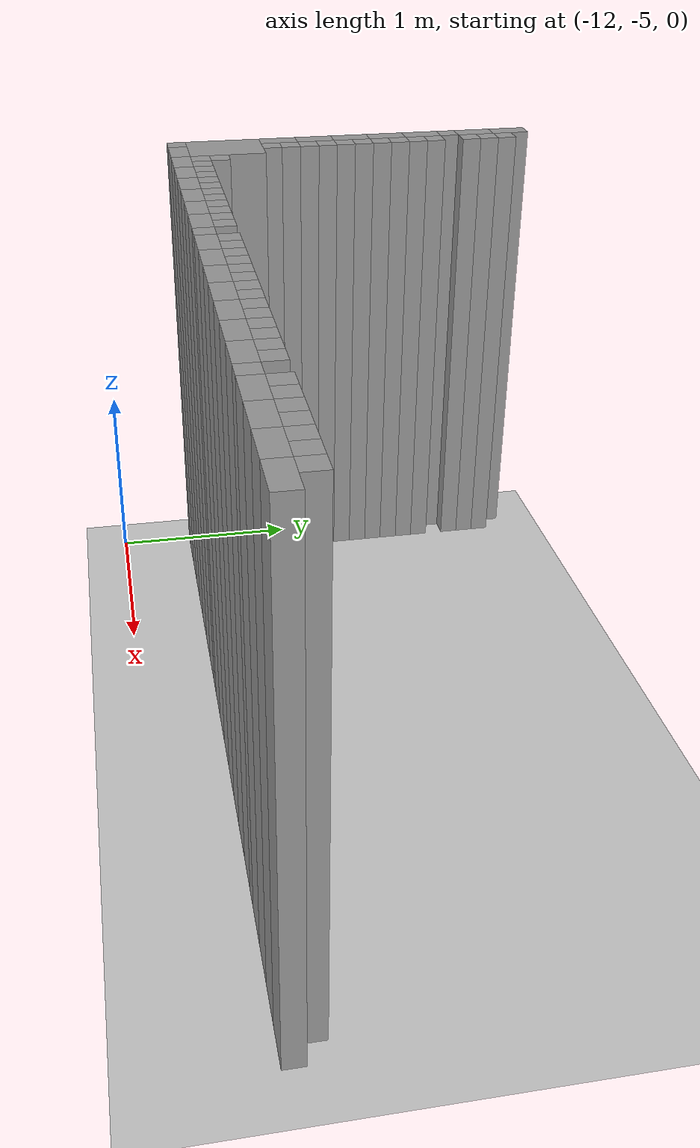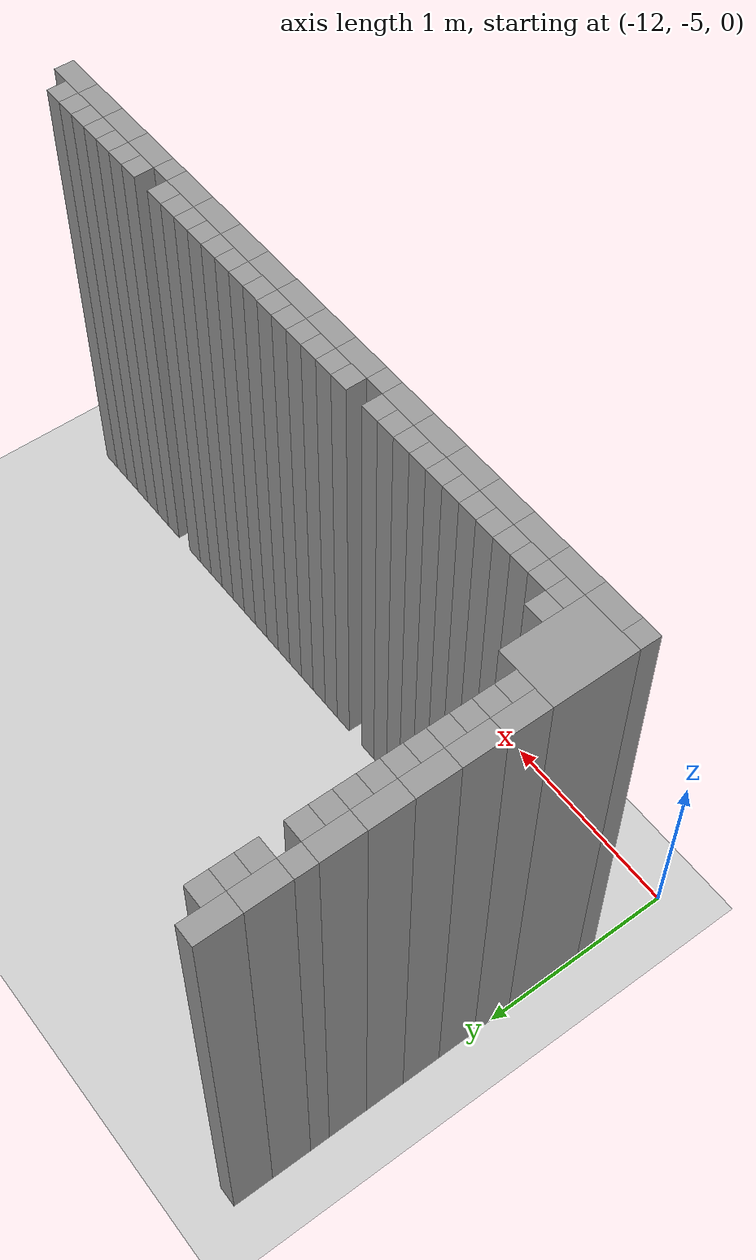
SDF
<sdf version="1.6">
 <world name="default">
  <include><uri>model://sun</uri></include>
  <include><uri>model://ground_plane</uri></include>
  <model name="stage_test">
   <static>1</static>
   <pose>-12 -12 0 0 0 0</pose>
   <link name="Wall_318">
    <pose>0.05 9.3 0 0 0 0</pose>
    <collision name="Wall_318_collision">
     <pose>0 0 1.25 0 0 0</pose>
     <geometry><box><size>0.1 0.1999999999999993 2.5</size></box></geometry>
    </collision>
    <visual name="Wall_318_visual">
     <pose>0 0 1.25 0 0 0</pose>
     <geometry><box><size>0.1 0.1999999999999993 2.5</size></box></geometry>
     <material>
      <script><uri>file://media/materials/scripts/gazebo.material</uri><name>Gazebo/Grey</name></script>
      <ambient>1 1 1 1</ambient>
     </material>
    </visual>
   </link>
   <link name="Wall_319">
    <pose>0.05 9.100000000000001 0 0 0 0</pose>
    <collision name="Wall_319_collision">
     <pose>0 0 1.25 0 0 0</pose>
     <geometry><box><size>0.1 0.20000000000000107 2.5</size></box></geometry>
    </collision>
    <visual name="Wall_319_visual">
     <pose>0 0 1.25 0 0 0</pose>
     <geometry><box><size>0.1 0.20000000000000107 2.5</size></box></geometry>
     <material>
      <script><uri>file://media/materials/scripts/gazebo.material</uri><name>Gazebo/Grey</name></script>
      <ambient>1 1 1 1</ambient>
     </material>
    </visual>
   </link>
   <link name="Wall_321">
    <pose>0.15 9.25 0 0 0 0</pose>
    <collision name="Wall_321_collision">
     <pose>0 0 1.25 0 0 0</pose>
     <geometry><box><size>0.1 0.09999999999999964 2.5</size></box></geometry>
    </collision>
    <visual name="Wall_321_visual">
     <pose>0 0 1.25 0 0 0</pose>
     <geometry><box><size>0.1 0.09999999999999964 2.5</size></box></geometry>
     <material>
      <script><uri>file://media/materials/scripts/gazebo.material</uri><name>Gazebo/Grey</name></script>
      <ambient>1 1 1 1</ambient>
     </material>
    </visual>
   </link>
   <link name="Wall_322">
    <pose>0.15 9.15 0 0 0 0</pose>
    <collision name="Wall_322_collision">
     <pose>0 0 1.25 0 0 0</pose>
     <geometry><box><size>0.1 0.10000000000000142 2.5</size></box></geometry>
    </collision>
    <visual name="Wall_322_visual">
     <pose>0 0 1.25 0 0 0</pose>
     <geometry><box><size>0.1 0.10000000000000142 2.5</size></box></geometry>
     <material>
      <script><uri>file://media/materials/scripts/gazebo.material</uri><name>Gazebo/Grey</name></script>
      <ambient>1 1 1 1</ambient>
     </material>
    </visual>
   </link>
   <link name="Wall_323">
    <pose>0.15 9.05 0 0 0 0</pose>
    <collision name="Wall_323_collision">
     <pose>0 0 1.25 0 0 0</pose>
     <geometry><box><size>0.1 0.09999999999999964 2.5</size></box></geometry>
    </collision>
    <visual name="Wall_323_visual">
     <pose>0 0 1.25 0 0 0</pose>
     <geometry><box><size>0.1 0.09999999999999964 2.5</size></box></geometry>
     <material>
      <script><uri>file://media/materials/scripts/gazebo.material</uri><name>Gazebo/Grey</name></script>
      <ambient>1 1 1 1</ambient>
     </material>
    </visual>
   </link>
   <link name="Wall_324">
    <pose>0.05 8.95 0 0 0 0</pose>
    <collision name="Wall_324_collision">
     <pose>0 0 1.25 0 0 0</pose>
     <geometry><box><size>0.1 0.09999999999999964 2.5</size></box></geometry>
    </collision>
    <visual name="Wall_324_visual">
     <pose>0 0 1.25 0 0 0</pose>
     <geometry><box><size>0.1 0.09999999999999964 2.5</size></box></geometry>
     <material>
      <script><uri>file://media/materials/scripts/gazebo.material</uri><name>Gazebo/Grey</name></script>
      <ambient>1 1 1 1</ambient>
     </material>
    </visual>
   </link>
   <link name="Wall_325">
    <pose>0.05 8.8 0 0 0 0</pose>
    <collision name="Wall_325_collision">
     <pose>0 0 1.25 0 0 0</pose>
     <geometry><box><size>0.1 0.1999999999999993 2.5</size></box></geometry>
    </collision>
    <visual name="Wall_325_visual">
     <pose>0 0 1.25 0 0 0</pose>
     <geometry><box><size>0.1 0.1999999999999993 2.5</size></box></geometry>
     <material>
      <script><uri>file://media/materials/scripts/gazebo.material</uri><name>Gazebo/Grey</name></script>
      <ambient>1 1 1 1</ambient>
     </material>
    </visual>
   </link>
   <link name="Wall_326">
    <pose>0.15 8.85 0 0 0 0</pose>
    <collision name="Wall_326_collision">
     <pose>0 0 1.25 0 0 0</pose>
     <geometry><box><size>0.1 0.09999999999999964 2.5</size></box></geometry>
    </collision>
    <visual name="Wall_326_visual">
     <pose>0 0 1.25 0 0 0</pose>
     <geometry><box><size>0.1 0.09999999999999964 2.5</size></box></geometry>
     <material>
      <script><uri>file://media/materials/scripts/gazebo.material</uri><name>Gazebo/Grey</name></script>
      <ambient>1 1 1 1</ambient>
     </material>
    </visual>
   </link>
   <link name="Wall_327">
    <pose>0.15 8.75 0 0 0 0</pose>
    <collision name="Wall_327_collision">
     <pose>0 0 1.25 0 0 0</pose>
     <geometry><box><size>0.1 0.09999999999999964 2.5</size></box></geometry>
    </collision>
    <visual name="Wall_327_visual">
     <pose>0 0 1.25 0 0 0</pose>
     <geometry><box><size>0.1 0.09999999999999964 2.5</size></box></geometry>
     <material>
      <script><uri>file://media/materials/scripts/gazebo.material</uri><name>Gazebo/Grey</name></script>
      <ambient>1 1 1 1</ambient>
     </material>
    </visual>
   </link>
   <link name="Wall_328">
    <pose>0.05 8.600000000000001 0 0 0 0</pose>
    <collision name="Wall_328_collision">
     <pose>0 0 1.25 0 0 0</pose>
     <geometry><box><size>0.1 0.20000000000000107 2.5</size></box></geometry>
    </collision>
    <visual name="Wall_328_visual">
     <pose>0 0 1.25 0 0 0</pose>
     <geometry><box><size>0.1 0.20000000000000107 2.5</size></box></geometry>
     <material>
      <script><uri>file://media/materials/scripts/gazebo.material</uri><name>Gazebo/Grey</name></script>
      <ambient>1 1 1 1</ambient>
     </material>
    </visual>
   </link>
   <link name="Wall_329">
    <pose>0.05 8.4 0 0 0 0</pose>
    <collision name="Wall_329_collision">
     <pose>0 0 1.25 0 0 0</pose>
     <geometry><box><size>0.1 0.1999999999999993 2.5</size></box></geometry>
    </collision>
    <visual name="Wall_329_visual">
     <pose>0 0 1.25 0 0 0</pose>
     <geometry><box><size>0.1 0.1999999999999993 2.5</size></box></geometry>
     <material>
      <script><uri>file://media/materials/scripts/gazebo.material</uri><name>Gazebo/Grey</name></script>
      <ambient>1 1 1 1</ambient>
     </material>
    </visual>
   </link>
   <link name="Wall_330">
    <pose>0.15 8.65 0 0 0 0</pose>
    <collision name="Wall_330_collision">
     <pose>0 0 1.25 0 0 0</pose>
     <geometry><box><size>0.1 0.10000000000000142 2.5</size></box></geometry>
    </collision>
    <visual name="Wall_330_visual">
     <pose>0 0 1.25 0 0 0</pose>
     <geometry><box><size>0.1 0.10000000000000142 2.5</size></box></geometry>
     <material>
      <script><uri>file://media/materials/scripts/gazebo.material</uri><name>Gazebo/Grey</name></script>
      <ambient>1 1 1 1</ambient>
     </material>
    </visual>
   </link>
   <link name="Wall_331">
    <pose>0.15 8.55 0 0 0 0</pose>
    <collision name="Wall_331_collision">
     <pose>0 0 1.25 0 0 0</pose>
     <geometry><box><size>0.1 0.09999999999999964 2.5</size></box></geometry>
    </collision>
    <visual name="Wall_331_visual">
     <pose>0 0 1.25 0 0 0</pose>
     <geometry><box><size>0.1 0.09999999999999964 2.5</size></box></geometry>
     <material>
      <script><uri>file://media/materials/scripts/gazebo.material</uri><name>Gazebo/Grey</name></script>
      <ambient>1 1 1 1</ambient>
     </material>
    </visual>
   </link>
   <link name="Wall_332">
    <pose>0.15 8.45 0 0 0 0</pose>
    <collision name="Wall_332_collision">
     <pose>0 0 1.25 0 0 0</pose>
     <geometry><box><size>0.1 0.09999999999999964 2.5</size></box></geometry>
    </collision>
    <visual name="Wall_332_visual">
     <pose>0 0 1.25 0 0 0</pose>
     <geometry><box><size>0.1 0.09999999999999964 2.5</size></box></geometry>
     <material>
      <script><uri>file://media/materials/scripts/gazebo.material</uri><name>Gazebo/Grey</name></script>
      <ambient>1 1 1 1</ambient>
     </material>
    </visual>
   </link>
   <link name="Wall_333">
    <pose>0.15 8.35 0 0 0 0</pose>
    <collision name="Wall_333_collision">
     <pose>0 0 1.25 0 0 0</pose>
     <geometry><box><size>0.1 0.09999999999999964 2.5</size></box></geometry>
    </collision>
    <visual name="Wall_333_visual">
     <pose>0 0 1.25 0 0 0</pose>
     <geometry><box><size>0.1 0.09999999999999964 2.5</size></box></geometry>
     <material>
      <script><uri>file://media/materials/scripts/gazebo.material</uri><name>Gazebo/Grey</name></script>
      <ambient>1 1 1 1</ambient>
     </material>
    </visual>
   </link>
   <link name="Wall_334">
    <pose>0.05 8.2 0 0 0 0</pose>
    <collision name="Wall_334_collision">
     <pose>0 0 1.25 0 0 0</pose>
     <geometry><box><size>0.1 0.20000000000000107 2.5</size></box></geometry>
    </collision>
    <visual name="Wall_334_visual">
     <pose>0 0 1.25 0 0 0</pose>
     <geometry><box><size>0.1 0.20000000000000107 2.5</size></box></geometry>
     <material>
      <script><uri>file://media/materials/scripts/gazebo.material</uri><name>Gazebo/Grey</name></script>
      <ambient>1 1 1 1</ambient>
     </material>
    </visual>
   </link>
   <link name="Wall_335">
    <pose>0.05 8.0 0 0 0 0</pose>
    <collision name="Wall_335_collision">
     <pose>0 0 1.25 0 0 0</pose>
     <geometry><box><size>0.1 0.1999999999999993 2.5</size></box></geometry>
    </collision>
    <visual name="Wall_335_visual">
     <pose>0 0 1.25 0 0 0</pose>
     <geometry><box><size>0.1 0.1999999999999993 2.5</size></box></geometry>
     <material>
      <script><uri>file://media/materials/scripts/gazebo.material</uri><name>Gazebo/Grey</name></script>
      <ambient>1 1 1 1</ambient>
     </material>
    </visual>
   </link>
   <link name="Wall_336">
    <pose>0.15 8.25 0 0 0 0</pose>
    <collision name="Wall_336_collision">
     <pose>0 0 1.25 0 0 0</pose>
     <geometry><box><size>0.1 0.09999999999999964 2.5</size></box></geometry>
    </collision>
    <visual name="Wall_336_visual">
     <pose>0 0 1.25 0 0 0</pose>
     <geometry><box><size>0.1 0.09999999999999964 2.5</size></box></geometry>
     <material>
      <script><uri>file://media/materials/scripts/gazebo.material</uri><name>Gazebo/Grey</name></script>
      <ambient>1 1 1 1</ambient>
     </material>
    </visual>
   </link>
   <link name="Wall_337">
    <pose>0.15 8.15 0 0 0 0</pose>
    <collision name="Wall_337_collision">
     <pose>0 0 1.25 0 0 0</pose>
     <geometry><box><size>0.1 0.10000000000000142 2.5</size></box></geometry>
    </collision>
    <visual name="Wall_337_visual">
     <pose>0 0 1.25 0 0 0</pose>
     <geometry><box><size>0.1 0.10000000000000142 2.5</size></box></geometry>
     <material>
      <script><uri>file://media/materials/scripts/gazebo.material</uri><name>Gazebo/Grey</name></script>
      <ambient>1 1 1 1</ambient>
     </material>
    </visual>
   </link>
   <link name="Wall_338">
    <pose>0.15 8.05 0 0 0 0</pose>
    <collision name="Wall_338_collision">
     <pose>0 0 1.25 0 0 0</pose>
     <geometry><box><size>0.1 0.09999999999999964 2.5</size></box></geometry>
    </collision>
    <visual name="Wall_338_visual">
     <pose>0 0 1.25 0 0 0</pose>
     <geometry><box><size>0.1 0.09999999999999964 2.5</size></box></geometry>
     <material>
      <script><uri>file://media/materials/scripts/gazebo.material</uri><name>Gazebo/Grey</name></script>
      <ambient>1 1 1 1</ambient>
     </material>
    </visual>
   </link>
   <link name="Wall_339">
    <pose>0.15 7.95 0 0 0 0</pose>
    <collision name="Wall_339_collision">
     <pose>0 0 1.25 0 0 0</pose>
     <geometry><box><size>0.1 0.09999999999999964 2.5</size></box></geometry>
    </collision>
    <visual name="Wall_339_visual">
     <pose>0 0 1.25 0 0 0</pose>
     <geometry><box><size>0.1 0.09999999999999964 2.5</size></box></geometry>
     <material>
      <script><uri>file://media/materials/scripts/gazebo.material</uri><name>Gazebo/Grey</name></script>
      <ambient>1 1 1 1</ambient>
     </material>
    </visual>
   </link>
   <link name="Wall_340">
    <pose>0.15000000000000002 7.699999999999999 0 0 0 0</pose>
    <collision name="Wall_340_collision">
     <pose>0 0 1.25 0 0 0</pose>
     <geometry><box><size>0.30000000000000004 0.40000000000000036 2.5</size></box></geometry>
    </collision>
    <visual name="Wall_340_visual">
     <pose>0 0 1.25 0 0 0</pose>
     <geometry><box><size>0.30000000000000004 0.40000000000000036 2.5</size></box></geometry>
     <material>
      <script><uri>file://media/materials/scripts/gazebo.material</uri><name>Gazebo/Grey</name></script>
      <ambient>1 1 1 1</ambient>
     </material>
    </visual>
   </link>
   <link name="Wall_341">
    <pose>0.35000000000000003 7.65 0 0 0 0</pose>
    <collision name="Wall_341_collision">
     <pose>0 0 1.25 0 0 0</pose>
     <geometry><box><size>0.09999999999999998 0.09999999999999964 2.5</size></box></geometry>
    </collision>
    <visual name="Wall_341_visual">
     <pose>0 0 1.25 0 0 0</pose>
     <geometry><box><size>0.09999999999999998 0.09999999999999964 2.5</size></box></geometry>
     <material>
      <script><uri>file://media/materials/scripts/gazebo.material</uri><name>Gazebo/Grey</name></script>
      <ambient>1 1 1 1</ambient>
     </material>
    </visual>
   </link>
   <link name="Wall_342">
    <pose>0.35000000000000003 7.550000000000001 0 0 0 0</pose>
    <collision name="Wall_342_collision">
     <pose>0 0 1.25 0 0 0</pose>
     <geometry><box><size>0.09999999999999998 0.10000000000000053 2.5</size></box></geometry>
    </collision>
    <visual name="Wall_342_visual">
     <pose>0 0 1.25 0 0 0</pose>
     <geometry><box><size>0.09999999999999998 0.10000000000000053 2.5</size></box></geometry>
     <material>
      <script><uri>file://media/materials/scripts/gazebo.material</uri><name>Gazebo/Grey</name></script>
      <ambient>1 1 1 1</ambient>
     </material>
    </visual>
   </link>
   <link name="Wall_343">
    <pose>0.44999999999999996 7.550000000000001 0 0 0 0</pose>
    <collision name="Wall_343_collision">
     <pose>0 0 1.25 0 0 0</pose>
     <geometry><box><size>0.09999999999999998 0.10000000000000053 2.5</size></box></geometry>
    </collision>
    <visual name="Wall_343_visual">
     <pose>0 0 1.25 0 0 0</pose>
     <geometry><box><size>0.09999999999999998 0.10000000000000053 2.5</size></box></geometry>
     <material>
      <script><uri>file://media/materials/scripts/gazebo.material</uri><name>Gazebo/Grey</name></script>
      <ambient>1 1 1 1</ambient>
     </material>
    </visual>
   </link>
   <link name="Wall_344">
    <pose>0.55 7.550000000000001 0 0 0 0</pose>
    <collision name="Wall_344_collision">
     <pose>0 0 1.25 0 0 0</pose>
     <geometry><box><size>0.10000000000000009 0.10000000000000053 2.5</size></box></geometry>
    </collision>
    <visual name="Wall_344_visual">
     <pose>0 0 1.25 0 0 0</pose>
     <geometry><box><size>0.10000000000000009 0.10000000000000053 2.5</size></box></geometry>
     <material>
      <script><uri>file://media/materials/scripts/gazebo.material</uri><name>Gazebo/Grey</name></script>
      <ambient>1 1 1 1</ambient>
     </material>
    </visual>
   </link>
   <link name="Wall_345">
    <pose>0.6500000000000001 7.550000000000001 0 0 0 0</pose>
    <collision name="Wall_345_collision">
     <pose>0 0 1.25 0 0 0</pose>
     <geometry><box><size>0.09999999999999998 0.10000000000000053 2.5</size></box></geometry>
    </collision>
    <visual name="Wall_345_visual">
     <pose>0 0 1.25 0 0 0</pose>
     <geometry><box><size>0.09999999999999998 0.10000000000000053 2.5</size></box></geometry>
     <material>
      <script><uri>file://media/materials/scripts/gazebo.material</uri><name>Gazebo/Grey</name></script>
      <ambient>1 1 1 1</ambient>
     </material>
    </visual>
   </link>
   <link name="Wall_346">
    <pose>0.75 7.550000000000001 0 0 0 0</pose>
    <collision name="Wall_346_collision">
     <pose>0 0 1.25 0 0 0</pose>
     <geometry><box><size>0.09999999999999998 0.10000000000000053 2.5</size></box></geometry>
    </collision>
    <visual name="Wall_346_visual">
     <pose>0 0 1.25 0 0 0</pose>
     <geometry><box><size>0.09999999999999998 0.10000000000000053 2.5</size></box></geometry>
     <material>
      <script><uri>file://media/materials/scripts/gazebo.material</uri><name>Gazebo/Grey</name></script>
      <ambient>1 1 1 1</ambient>
     </material>
    </visual>
   </link>
   <link name="Wall_347">
    <pose>0.8500000000000001 7.550000000000001 0 0 0 0</pose>
    <collision name="Wall_347_collision">
     <pose>0 0 1.25 0 0 0</pose>
     <geometry><box><size>0.09999999999999998 0.10000000000000053 2.5</size></box></geometry>
    </collision>
    <visual name="Wall_347_visual">
     <pose>0 0 1.25 0 0 0</pose>
     <geometry><box><size>0.09999999999999998 0.10000000000000053 2.5</size></box></geometry>
     <material>
      <script><uri>file://media/materials/scripts/gazebo.material</uri><name>Gazebo/Grey</name></script>
      <ambient>1 1 1 1</ambient>
     </material>
    </visual>
   </link>
   <link name="Wall_348">
    <pose>0.95 7.550000000000001 0 0 0 0</pose>
    <collision name="Wall_348_collision">
     <pose>0 0 1.25 0 0 0</pose>
     <geometry><box><size>0.09999999999999998 0.10000000000000053 2.5</size></box></geometry>
    </collision>
    <visual name="Wall_348_visual">
     <pose>0 0 1.25 0 0 0</pose>
     <geometry><box><size>0.09999999999999998 0.10000000000000053 2.5</size></box></geometry>
     <material>
      <script><uri>file://media/materials/scripts/gazebo.material</uri><name>Gazebo/Grey</name></script>
      <ambient>1 1 1 1</ambient>
     </material>
    </visual>
   </link>
   <link name="Wall_349">
    <pose>1.05 7.550000000000001 0 0 0 0</pose>
    <collision name="Wall_349_collision">
     <pose>0 0 1.25 0 0 0</pose>
     <geometry><box><size>0.10000000000000009 0.10000000000000053 2.5</size></box></geometry>
    </collision>
    <visual name="Wall_349_visual">
     <pose>0 0 1.25 0 0 0</pose>
     <geometry><box><size>0.10000000000000009 0.10000000000000053 2.5</size></box></geometry>
     <material>
      <script><uri>file://media/materials/scripts/gazebo.material</uri><name>Gazebo/Grey</name></script>
      <ambient>1 1 1 1</ambient>
     </material>
    </visual>
   </link>
   <link name="Wall_350">
    <pose>1.1500000000000001 7.550000000000001 0 0 0 0</pose>
    <collision name="Wall_350_collision">
     <pose>0 0 1.25 0 0 0</pose>
     <geometry><box><size>0.10000000000000009 0.10000000000000053 2.5</size></box></geometry>
    </collision>
    <visual name="Wall_350_visual">
     <pose>0 0 1.25 0 0 0</pose>
     <geometry><box><size>0.10000000000000009 0.10000000000000053 2.5</size></box></geometry>
     <material>
      <script><uri>file://media/materials/scripts/gazebo.material</uri><name>Gazebo/Grey</name></script>
      <ambient>1 1 1 1</ambient>
     </material>
    </visual>
   </link>
   <link name="Wall_351">
    <pose>1.25 7.550000000000001 0 0 0 0</pose>
    <collision name="Wall_351_collision">
     <pose>0 0 1.25 0 0 0</pose>
     <geometry><box><size>0.09999999999999987 0.10000000000000053 2.5</size></box></geometry>
    </collision>
    <visual name="Wall_351_visual">
     <pose>0 0 1.25 0 0 0</pose>
     <geometry><box><size>0.09999999999999987 0.10000000000000053 2.5</size></box></geometry>
     <material>
      <script><uri>file://media/materials/scripts/gazebo.material</uri><name>Gazebo/Grey</name></script>
      <ambient>1 1 1 1</ambient>
     </material>
    </visual>
   </link>
   <link name="Wall_352">
    <pose>1.35 7.550000000000001 0 0 0 0</pose>
    <collision name="Wall_352_collision">
     <pose>0 0 1.25 0 0 0</pose>
     <geometry><box><size>0.10000000000000009 0.10000000000000053 2.5</size></box></geometry>
    </collision>
    <visual name="Wall_352_visual">
     <pose>0 0 1.25 0 0 0</pose>
     <geometry><box><size>0.10000000000000009 0.10000000000000053 2.5</size></box></geometry>
     <material>
      <script><uri>file://media/materials/scripts/gazebo.material</uri><name>Gazebo/Grey</name></script>
      <ambient>1 1 1 1</ambient>
     </material>
    </visual>
   </link>
   <link name="Wall_353">
    <pose>1.4500000000000002 7.550000000000001 0 0 0 0</pose>
    <collision name="Wall_353_collision">
     <pose>0 0 1.25 0 0 0</pose>
     <geometry><box><size>0.09999999999999987 0.10000000000000053 2.5</size></box></geometry>
    </collision>
    <visual name="Wall_353_visual">
     <pose>0 0 1.25 0 0 0</pose>
     <geometry><box><size>0.09999999999999987 0.10000000000000053 2.5</size></box></geometry>
     <material>
      <script><uri>file://media/materials/scripts/gazebo.material</uri><name>Gazebo/Grey</name></script>
      <ambient>1 1 1 1</ambient>
     </material>
    </visual>
   </link>
   <link name="Wall_354">
    <pose>0.05 7.45 0 0 0 0</pose>
    <collision name="Wall_354_collision">
     <pose>0 0 1.25 0 0 0</pose>
     <geometry><box><size>0.1 0.09999999999999964 2.5</size></box></geometry>
    </collision>
    <visual name="Wall_354_visual">
     <pose>0 0 1.25 0 0 0</pose>
     <geometry><box><size>0.1 0.09999999999999964 2.5</size></box></geometry>
     <material>
      <script><uri>file://media/materials/scripts/gazebo.material</uri><name>Gazebo/Grey</name></script>
      <ambient>1 1 1 1</ambient>
     </material>
    </visual>
   </link>
   <link name="Wall_355">
    <pose>0.2 7.45 0 0 0 0</pose>
    <collision name="Wall_355_collision">
     <pose>0 0 1.25 0 0 0</pose>
     <geometry><box><size>0.20000000000000004 0.09999999999999964 2.5</size></box></geometry>
    </collision>
    <visual name="Wall_355_visual">
     <pose>0 0 1.25 0 0 0</pose>
     <geometry><box><size>0.20000000000000004 0.09999999999999964 2.5</size></box></geometry>
     <material>
      <script><uri>file://media/materials/scripts/gazebo.material</uri><name>Gazebo/Grey</name></script>
      <ambient>1 1 1 1</ambient>
     </material>
    </visual>
   </link>
   <link name="Wall_356">
    <pose>0.4 7.45 0 0 0 0</pose>
    <collision name="Wall_356_collision">
     <pose>0 0 1.25 0 0 0</pose>
     <geometry><box><size>0.19999999999999996 0.09999999999999964 2.5</size></box></geometry>
    </collision>
    <visual name="Wall_356_visual">
     <pose>0 0 1.25 0 0 0</pose>
     <geometry><box><size>0.19999999999999996 0.09999999999999964 2.5</size></box></geometry>
     <material>
      <script><uri>file://media/materials/scripts/gazebo.material</uri><name>Gazebo/Grey</name></script>
      <ambient>1 1 1 1</ambient>
     </material>
    </visual>
   </link>
   <link name="Wall_357">
    <pose>0.6000000000000001 7.45 0 0 0 0</pose>
    <collision name="Wall_357_collision">
     <pose>0 0 1.25 0 0 0</pose>
     <geometry><box><size>0.20000000000000007 0.09999999999999964 2.5</size></box></geometry>
    </collision>
    <visual name="Wall_357_visual">
     <pose>0 0 1.25 0 0 0</pose>
     <geometry><box><size>0.20000000000000007 0.09999999999999964 2.5</size></box></geometry>
     <material>
      <script><uri>file://media/materials/scripts/gazebo.material</uri><name>Gazebo/Grey</name></script>
      <ambient>1 1 1 1</ambient>
     </material>
    </visual>
   </link>
   <link name="Wall_358">
    <pose>0.8 7.45 0 0 0 0</pose>
    <collision name="Wall_358_collision">
     <pose>0 0 1.25 0 0 0</pose>
     <geometry><box><size>0.19999999999999996 0.09999999999999964 2.5</size></box></geometry>
    </collision>
    <visual name="Wall_358_visual">
     <pose>0 0 1.25 0 0 0</pose>
     <geometry><box><size>0.19999999999999996 0.09999999999999964 2.5</size></box></geometry>
     <material>
      <script><uri>file://media/materials/scripts/gazebo.material</uri><name>Gazebo/Grey</name></script>
      <ambient>1 1 1 1</ambient>
     </material>
    </visual>
   </link>
   <link name="Wall_359">
    <pose>1.0 7.45 0 0 0 0</pose>
    <collision name="Wall_359_collision">
     <pose>0 0 1.25 0 0 0</pose>
     <geometry><box><size>0.20000000000000007 0.09999999999999964 2.5</size></box></geometry>
    </collision>
    <visual name="Wall_359_visual">
     <pose>0 0 1.25 0 0 0</pose>
     <geometry><box><size>0.20000000000000007 0.09999999999999964 2.5</size></box></geometry>
     <material>
      <script><uri>file://media/materials/scripts/gazebo.material</uri><name>Gazebo/Grey</name></script>
      <ambient>1 1 1 1</ambient>
     </material>
    </visual>
   </link>
   <link name="Wall_360">
    <pose>1.2000000000000002 7.45 0 0 0 0</pose>
    <collision name="Wall_360_collision">
     <pose>0 0 1.25 0 0 0</pose>
     <geometry><box><size>0.19999999999999996 0.09999999999999964 2.5</size></box></geometry>
    </collision>
    <visual name="Wall_360_visual">
     <pose>0 0 1.25 0 0 0</pose>
     <geometry><box><size>0.19999999999999996 0.09999999999999964 2.5</size></box></geometry>
     <material>
      <script><uri>file://media/materials/scripts/gazebo.material</uri><name>Gazebo/Grey</name></script>
      <ambient>1 1 1 1</ambient>
     </material>
    </visual>
   </link>
   <link name="Wall_361">
    <pose>1.4 7.45 0 0 0 0</pose>
    <collision name="Wall_361_collision">
     <pose>0 0 1.25 0 0 0</pose>
     <geometry><box><size>0.19999999999999996 0.09999999999999964 2.5</size></box></geometry>
    </collision>
    <visual name="Wall_361_visual">
     <pose>0 0 1.25 0 0 0</pose>
     <geometry><box><size>0.19999999999999996 0.09999999999999964 2.5</size></box></geometry>
     <material>
      <script><uri>file://media/materials/scripts/gazebo.material</uri><name>Gazebo/Grey</name></script>
      <ambient>1 1 1 1</ambient>
     </material>
    </visual>
   </link>
   <link name="Wall_362">
    <pose>1.65 7.550000000000001 0 0 0 0</pose>
    <collision name="Wall_362_collision">
     <pose>0 0 1.25 0 0 0</pose>
     <geometry><box><size>0.10000000000000009 0.10000000000000053 2.5</size></box></geometry>
    </collision>
    <visual name="Wall_362_visual">
     <pose>0 0 1.25 0 0 0</pose>
     <geometry><box><size>0.10000000000000009 0.10000000000000053 2.5</size></box></geometry>
     <material>
      <script><uri>file://media/materials/scripts/gazebo.material</uri><name>Gazebo/Grey</name></script>
      <ambient>1 1 1 1</ambient>
     </material>
    </visual>
   </link>
   <link name="Wall_363">
    <pose>1.75 7.550000000000001 0 0 0 0</pose>
    <collision name="Wall_363_collision">
     <pose>0 0 1.25 0 0 0</pose>
     <geometry><box><size>0.09999999999999987 0.10000000000000053 2.5</size></box></geometry>
    </collision>
    <visual name="Wall_363_visual">
     <pose>0 0 1.25 0 0 0</pose>
     <geometry><box><size>0.09999999999999987 0.10000000000000053 2.5</size></box></geometry>
     <material>
      <script><uri>file://media/materials/scripts/gazebo.material</uri><name>Gazebo/Grey</name></script>
      <ambient>1 1 1 1</ambient>
     </material>
    </visual>
   </link>
   <link name="Wall_364">
    <pose>1.85 7.550000000000001 0 0 0 0</pose>
    <collision name="Wall_364_collision">
     <pose>0 0 1.25 0 0 0</pose>
     <geometry><box><size>0.10000000000000009 0.10000000000000053 2.5</size></box></geometry>
    </collision>
    <visual name="Wall_364_visual">
     <pose>0 0 1.25 0 0 0</pose>
     <geometry><box><size>0.10000000000000009 0.10000000000000053 2.5</size></box></geometry>
     <material>
      <script><uri>file://media/materials/scripts/gazebo.material</uri><name>Gazebo/Grey</name></script>
      <ambient>1 1 1 1</ambient>
     </material>
    </visual>
   </link>
   <link name="Wall_365">
    <pose>1.9500000000000002 7.550000000000001 0 0 0 0</pose>
    <collision name="Wall_365_collision">
     <pose>0 0 1.25 0 0 0</pose>
     <geometry><box><size>0.09999999999999987 0.10000000000000053 2.5</size></box></geometry>
    </collision>
    <visual name="Wall_365_visual">
     <pose>0 0 1.25 0 0 0</pose>
     <geometry><box><size>0.09999999999999987 0.10000000000000053 2.5</size></box></geometry>
     <material>
      <script><uri>file://media/materials/scripts/gazebo.material</uri><name>Gazebo/Grey</name></script>
      <ambient>1 1 1 1</ambient>
     </material>
    </visual>
   </link>
   <link name="Wall_366">
    <pose>2.05 7.550000000000001 0 0 0 0</pose>
    <collision name="Wall_366_collision">
     <pose>0 0 1.25 0 0 0</pose>
     <geometry><box><size>0.10000000000000009 0.10000000000000053 2.5</size></box></geometry>
    </collision>
    <visual name="Wall_366_visual">
     <pose>0 0 1.25 0 0 0</pose>
     <geometry><box><size>0.10000000000000009 0.10000000000000053 2.5</size></box></geometry>
     <material>
      <script><uri>file://media/materials/scripts/gazebo.material</uri><name>Gazebo/Grey</name></script>
      <ambient>1 1 1 1</ambient>
     </material>
    </visual>
   </link>
   <link name="Wall_367">
    <pose>2.1500000000000004 7.550000000000001 0 0 0 0</pose>
    <collision name="Wall_367_collision">
     <pose>0 0 1.25 0 0 0</pose>
     <geometry><box><size>0.10000000000000009 0.10000000000000053 2.5</size></box></geometry>
    </collision>
    <visual name="Wall_367_visual">
     <pose>0 0 1.25 0 0 0</pose>
     <geometry><box><size>0.10000000000000009 0.10000000000000053 2.5</size></box></geometry>
     <material>
      <script><uri>file://media/materials/scripts/gazebo.material</uri><name>Gazebo/Grey</name></script>
      <ambient>1 1 1 1</ambient>
     </material>
    </visual>
   </link>
   <link name="Wall_368">
    <pose>2.25 7.550000000000001 0 0 0 0</pose>
    <collision name="Wall_368_collision">
     <pose>0 0 1.25 0 0 0</pose>
     <geometry><box><size>0.10000000000000009 0.10000000000000053 2.5</size></box></geometry>
    </collision>
    <visual name="Wall_368_visual">
     <pose>0 0 1.25 0 0 0</pose>
     <geometry><box><size>0.10000000000000009 0.10000000000000053 2.5</size></box></geometry>
     <material>
      <script><uri>file://media/materials/scripts/gazebo.material</uri><name>Gazebo/Grey</name></script>
      <ambient>1 1 1 1</ambient>
     </material>
    </visual>
   </link>
   <link name="Wall_369">
    <pose>2.3500000000000005 7.550000000000001 0 0 0 0</pose>
    <collision name="Wall_369_collision">
     <pose>0 0 1.25 0 0 0</pose>
     <geometry><box><size>0.10000000000000009 0.10000000000000053 2.5</size></box></geometry>
    </collision>
    <visual name="Wall_369_visual">
     <pose>0 0 1.25 0 0 0</pose>
     <geometry><box><size>0.10000000000000009 0.10000000000000053 2.5</size></box></geometry>
     <material>
      <script><uri>file://media/materials/scripts/gazebo.material</uri><name>Gazebo/Grey</name></script>
      <ambient>1 1 1 1</ambient>
     </material>
    </visual>
   </link>
   <link name="Wall_370">
    <pose>2.45 7.550000000000001 0 0 0 0</pose>
    <collision name="Wall_370_collision">
     <pose>0 0 1.25 0 0 0</pose>
     <geometry><box><size>0.09999999999999964 0.10000000000000053 2.5</size></box></geometry>
    </collision>
    <visual name="Wall_370_visual">
     <pose>0 0 1.25 0 0 0</pose>
     <geometry><box><size>0.09999999999999964 0.10000000000000053 2.5</size></box></geometry>
     <material>
      <script><uri>file://media/materials/scripts/gazebo.material</uri><name>Gazebo/Grey</name></script>
      <ambient>1 1 1 1</ambient>
     </material>
    </visual>
   </link>
   <link name="Wall_371">
    <pose>2.55 7.550000000000001 0 0 0 0</pose>
    <collision name="Wall_371_collision">
     <pose>0 0 1.25 0 0 0</pose>
     <geometry><box><size>0.10000000000000009 0.10000000000000053 2.5</size></box></geometry>
    </collision>
    <visual name="Wall_371_visual">
     <pose>0 0 1.25 0 0 0</pose>
     <geometry><box><size>0.10000000000000009 0.10000000000000053 2.5</size></box></geometry>
     <material>
      <script><uri>file://media/materials/scripts/gazebo.material</uri><name>Gazebo/Grey</name></script>
      <ambient>1 1 1 1</ambient>
     </material>
    </visual>
   </link>
   <link name="Wall_372">
    <pose>2.65 7.550000000000001 0 0 0 0</pose>
    <collision name="Wall_372_collision">
     <pose>0 0 1.25 0 0 0</pose>
     <geometry><box><size>0.10000000000000009 0.10000000000000053 2.5</size></box></geometry>
    </collision>
    <visual name="Wall_372_visual">
     <pose>0 0 1.25 0 0 0</pose>
     <geometry><box><size>0.10000000000000009 0.10000000000000053 2.5</size></box></geometry>
     <material>
      <script><uri>file://media/materials/scripts/gazebo.material</uri><name>Gazebo/Grey</name></script>
      <ambient>1 1 1 1</ambient>
     </material>
    </visual>
   </link>
   <link name="Wall_373">
    <pose>2.75 7.550000000000001 0 0 0 0</pose>
    <collision name="Wall_373_collision">
     <pose>0 0 1.25 0 0 0</pose>
     <geometry><box><size>0.10000000000000009 0.10000000000000053 2.5</size></box></geometry>
    </collision>
    <visual name="Wall_373_visual">
     <pose>0 0 1.25 0 0 0</pose>
     <geometry><box><size>0.10000000000000009 0.10000000000000053 2.5</size></box></geometry>
     <material>
      <script><uri>file://media/materials/scripts/gazebo.material</uri><name>Gazebo/Grey</name></script>
      <ambient>1 1 1 1</ambient>
     </material>
    </visual>
   </link>
   <link name="Wall_374">
    <pose>2.8500000000000005 7.550000000000001 0 0 0 0</pose>
    <collision name="Wall_374_collision">
     <pose>0 0 1.25 0 0 0</pose>
     <geometry><box><size>0.10000000000000009 0.10000000000000053 2.5</size></box></geometry>
    </collision>
    <visual name="Wall_374_visual">
     <pose>0 0 1.25 0 0 0</pose>
     <geometry><box><size>0.10000000000000009 0.10000000000000053 2.5</size></box></geometry>
     <material>
      <script><uri>file://media/materials/scripts/gazebo.material</uri><name>Gazebo/Grey</name></script>
      <ambient>1 1 1 1</ambient>
     </material>
    </visual>
   </link>
   <link name="Wall_375">
    <pose>2.95 7.550000000000001 0 0 0 0</pose>
    <collision name="Wall_375_collision">
     <pose>0 0 1.25 0 0 0</pose>
     <geometry><box><size>0.09999999999999964 0.10000000000000053 2.5</size></box></geometry>
    </collision>
    <visual name="Wall_375_visual">
     <pose>0 0 1.25 0 0 0</pose>
     <geometry><box><size>0.09999999999999964 0.10000000000000053 2.5</size></box></geometry>
     <material>
      <script><uri>file://media/materials/scripts/gazebo.material</uri><name>Gazebo/Grey</name></script>
      <ambient>1 1 1 1</ambient>
     </material>
    </visual>
   </link>
   <link name="Wall_376">
    <pose>1.55 7.45 0 0 0 0</pose>
    <collision name="Wall_376_collision">
     <pose>0 0 1.25 0 0 0</pose>
     <geometry><box><size>0.10000000000000009 0.09999999999999964 2.5</size></box></geometry>
    </collision>
    <visual name="Wall_376_visual">
     <pose>0 0 1.25 0 0 0</pose>
     <geometry><box><size>0.10000000000000009 0.09999999999999964 2.5</size></box></geometry>
     <material>
      <script><uri>file://media/materials/scripts/gazebo.material</uri><name>Gazebo/Grey</name></script>
      <ambient>1 1 1 1</ambient>
     </material>
    </visual>
   </link>
   <link name="Wall_377">
    <pose>1.7000000000000002 7.45 0 0 0 0</pose>
    <collision name="Wall_377_collision">
     <pose>0 0 1.25 0 0 0</pose>
     <geometry><box><size>0.19999999999999996 0.09999999999999964 2.5</size></box></geometry>
    </collision>
    <visual name="Wall_377_visual">
     <pose>0 0 1.25 0 0 0</pose>
     <geometry><box><size>0.19999999999999996 0.09999999999999964 2.5</size></box></geometry>
     <material>
      <script><uri>file://media/materials/scripts/gazebo.material</uri><name>Gazebo/Grey</name></script>
      <ambient>1 1 1 1</ambient>
     </material>
    </visual>
   </link>
   <link name="Wall_378">
    <pose>1.9 7.45 0 0 0 0</pose>
    <collision name="Wall_378_collision">
     <pose>0 0 1.25 0 0 0</pose>
     <geometry><box><size>0.19999999999999996 0.09999999999999964 2.5</size></box></geometry>
    </collision>
    <visual name="Wall_378_visual">
     <pose>0 0 1.25 0 0 0</pose>
     <geometry><box><size>0.19999999999999996 0.09999999999999964 2.5</size></box></geometry>
     <material>
      <script><uri>file://media/materials/scripts/gazebo.material</uri><name>Gazebo/Grey</name></script>
      <ambient>1 1 1 1</ambient>
     </material>
    </visual>
   </link>
   <link name="Wall_379">
    <pose>2.1 7.45 0 0 0 0</pose>
    <collision name="Wall_379_collision">
     <pose>0 0 1.25 0 0 0</pose>
     <geometry><box><size>0.20000000000000018 0.09999999999999964 2.5</size></box></geometry>
    </collision>
    <visual name="Wall_379_visual">
     <pose>0 0 1.25 0 0 0</pose>
     <geometry><box><size>0.20000000000000018 0.09999999999999964 2.5</size></box></geometry>
     <material>
      <script><uri>file://media/materials/scripts/gazebo.material</uri><name>Gazebo/Grey</name></script>
      <ambient>1 1 1 1</ambient>
     </material>
    </visual>
   </link>
   <link name="Wall_380">
    <pose>2.3000000000000003 7.45 0 0 0 0</pose>
    <collision name="Wall_380_collision">
     <pose>0 0 1.25 0 0 0</pose>
     <geometry><box><size>0.20000000000000018 0.09999999999999964 2.5</size></box></geometry>
    </collision>
    <visual name="Wall_380_visual">
     <pose>0 0 1.25 0 0 0</pose>
     <geometry><box><size>0.20000000000000018 0.09999999999999964 2.5</size></box></geometry>
     <material>
      <script><uri>file://media/materials/scripts/gazebo.material</uri><name>Gazebo/Grey</name></script>
      <ambient>1 1 1 1</ambient>
     </material>
    </visual>
   </link>
   <link name="Wall_381">
    <pose>2.5 7.45 0 0 0 0</pose>
    <collision name="Wall_381_collision">
     <pose>0 0 1.25 0 0 0</pose>
     <geometry><box><size>0.19999999999999973 0.09999999999999964 2.5</size></box></geometry>
    </collision>
    <visual name="Wall_381_visual">
     <pose>0 0 1.25 0 0 0</pose>
     <geometry><box><size>0.19999999999999973 0.09999999999999964 2.5</size></box></geometry>
     <material>
      <script><uri>file://media/materials/scripts/gazebo.material</uri><name>Gazebo/Grey</name></script>
      <ambient>1 1 1 1</ambient>
     </material>
    </visual>
   </link>
   <link name="Wall_382">
    <pose>2.7 7.45 0 0 0 0</pose>
    <collision name="Wall_382_collision">
     <pose>0 0 1.25 0 0 0</pose>
     <geometry><box><size>0.20000000000000018 0.09999999999999964 2.5</size></box></geometry>
    </collision>
    <visual name="Wall_382_visual">
     <pose>0 0 1.25 0 0 0</pose>
     <geometry><box><size>0.20000000000000018 0.09999999999999964 2.5</size></box></geometry>
     <material>
      <script><uri>file://media/materials/scripts/gazebo.material</uri><name>Gazebo/Grey</name></script>
      <ambient>1 1 1 1</ambient>
     </material>
    </visual>
   </link>
   <link name="Wall_383">
    <pose>2.9000000000000004 7.45 0 0 0 0</pose>
    <collision name="Wall_383_collision">
     <pose>0 0 1.25 0 0 0</pose>
     <geometry><box><size>0.19999999999999973 0.09999999999999964 2.5</size></box></geometry>
    </collision>
    <visual name="Wall_383_visual">
     <pose>0 0 1.25 0 0 0</pose>
     <geometry><box><size>0.19999999999999973 0.09999999999999964 2.5</size></box></geometry>
     <material>
      <script><uri>file://media/materials/scripts/gazebo.material</uri><name>Gazebo/Grey</name></script>
      <ambient>1 1 1 1</ambient>
     </material>
    </visual>
   </link>
   <link name="Wall_389">
    <pose>3.15 7.550000000000001 0 0 0 0</pose>
    <collision name="Wall_389_collision">
     <pose>0 0 1.25 0 0 0</pose>
     <geometry><box><size>0.10000000000000009 0.10000000000000053 2.5</size></box></geometry>
    </collision>
    <visual name="Wall_389_visual">
     <pose>0 0 1.25 0 0 0</pose>
     <geometry><box><size>0.10000000000000009 0.10000000000000053 2.5</size></box></geometry>
     <material>
      <script><uri>file://media/materials/scripts/gazebo.material</uri><name>Gazebo/Grey</name></script>
      <ambient>1 1 1 1</ambient>
     </material>
    </visual>
   </link>
   <link name="Wall_390">
    <pose>3.25 7.550000000000001 0 0 0 0</pose>
    <collision name="Wall_390_collision">
     <pose>0 0 1.25 0 0 0</pose>
     <geometry><box><size>0.10000000000000009 0.10000000000000053 2.5</size></box></geometry>
    </collision>
    <visual name="Wall_390_visual">
     <pose>0 0 1.25 0 0 0</pose>
     <geometry><box><size>0.10000000000000009 0.10000000000000053 2.5</size></box></geometry>
     <material>
      <script><uri>file://media/materials/scripts/gazebo.material</uri><name>Gazebo/Grey</name></script>
      <ambient>1 1 1 1</ambient>
     </material>
    </visual>
   </link>
   <link name="Wall_391">
    <pose>3.3500000000000005 7.550000000000001 0 0 0 0</pose>
    <collision name="Wall_391_collision">
     <pose>0 0 1.25 0 0 0</pose>
     <geometry><box><size>0.10000000000000009 0.10000000000000053 2.5</size></box></geometry>
    </collision>
    <visual name="Wall_391_visual">
     <pose>0 0 1.25 0 0 0</pose>
     <geometry><box><size>0.10000000000000009 0.10000000000000053 2.5</size></box></geometry>
     <material>
      <script><uri>file://media/materials/scripts/gazebo.material</uri><name>Gazebo/Grey</name></script>
      <ambient>1 1 1 1</ambient>
     </material>
    </visual>
   </link>
   <link name="Wall_392">
    <pose>3.45 7.550000000000001 0 0 0 0</pose>
    <collision name="Wall_392_collision">
     <pose>0 0 1.25 0 0 0</pose>
     <geometry><box><size>0.09999999999999964 0.10000000000000053 2.5</size></box></geometry>
    </collision>
    <visual name="Wall_392_visual">
     <pose>0 0 1.25 0 0 0</pose>
     <geometry><box><size>0.09999999999999964 0.10000000000000053 2.5</size></box></geometry>
     <material>
      <script><uri>file://media/materials/scripts/gazebo.material</uri><name>Gazebo/Grey</name></script>
      <ambient>1 1 1 1</ambient>
     </material>
    </visual>
   </link>
   <link name="Wall_393">
    <pose>3.55 7.550000000000001 0 0 0 0</pose>
    <collision name="Wall_393_collision">
     <pose>0 0 1.25 0 0 0</pose>
     <geometry><box><size>0.10000000000000009 0.10000000000000053 2.5</size></box></geometry>
    </collision>
    <visual name="Wall_393_visual">
     <pose>0 0 1.25 0 0 0</pose>
     <geometry><box><size>0.10000000000000009 0.10000000000000053 2.5</size></box></geometry>
     <material>
      <script><uri>file://media/materials/scripts/gazebo.material</uri><name>Gazebo/Grey</name></script>
      <ambient>1 1 1 1</ambient>
     </material>
    </visual>
   </link>
   <link name="Wall_394">
    <pose>3.65 7.550000000000001 0 0 0 0</pose>
    <collision name="Wall_394_collision">
     <pose>0 0 1.25 0 0 0</pose>
     <geometry><box><size>0.10000000000000009 0.10000000000000053 2.5</size></box></geometry>
    </collision>
    <visual name="Wall_394_visual">
     <pose>0 0 1.25 0 0 0</pose>
     <geometry><box><size>0.10000000000000009 0.10000000000000053 2.5</size></box></geometry>
     <material>
      <script><uri>file://media/materials/scripts/gazebo.material</uri><name>Gazebo/Grey</name></script>
      <ambient>1 1 1 1</ambient>
     </material>
    </visual>
   </link>
   <link name="Wall_395">
    <pose>3.75 7.550000000000001 0 0 0 0</pose>
    <collision name="Wall_395_collision">
     <pose>0 0 1.25 0 0 0</pose>
     <geometry><box><size>0.10000000000000009 0.10000000000000053 2.5</size></box></geometry>
    </collision>
    <visual name="Wall_395_visual">
     <pose>0 0 1.25 0 0 0</pose>
     <geometry><box><size>0.10000000000000009 0.10000000000000053 2.5</size></box></geometry>
     <material>
      <script><uri>file://media/materials/scripts/gazebo.material</uri><name>Gazebo/Grey</name></script>
      <ambient>1 1 1 1</ambient>
     </material>
    </visual>
   </link>
   <link name="Wall_403">
    <pose>3.05 7.45 0 0 0 0</pose>
    <collision name="Wall_403_collision">
     <pose>0 0 1.25 0 0 0</pose>
     <geometry><box><size>0.10000000000000009 0.09999999999999964 2.5</size></box></geometry>
    </collision>
    <visual name="Wall_403_visual">
     <pose>0 0 1.25 0 0 0</pose>
     <geometry><box><size>0.10000000000000009 0.09999999999999964 2.5</size></box></geometry>
     <material>
      <script><uri>file://media/materials/scripts/gazebo.material</uri><name>Gazebo/Grey</name></script>
      <ambient>1 1 1 1</ambient>
     </material>
    </visual>
   </link>
   <link name="Wall_404">
    <pose>3.2 7.45 0 0 0 0</pose>
    <collision name="Wall_404_collision">
     <pose>0 0 1.25 0 0 0</pose>
     <geometry><box><size>0.20000000000000018 0.09999999999999964 2.5</size></box></geometry>
    </collision>
    <visual name="Wall_404_visual">
     <pose>0 0 1.25 0 0 0</pose>
     <geometry><box><size>0.20000000000000018 0.09999999999999964 2.5</size></box></geometry>
     <material>
      <script><uri>file://media/materials/scripts/gazebo.material</uri><name>Gazebo/Grey</name></script>
      <ambient>1 1 1 1</ambient>
     </material>
    </visual>
   </link>
   <link name="Wall_405">
    <pose>3.4000000000000004 7.45 0 0 0 0</pose>
    <collision name="Wall_405_collision">
     <pose>0 0 1.25 0 0 0</pose>
     <geometry><box><size>0.19999999999999973 0.09999999999999964 2.5</size></box></geometry>
    </collision>
    <visual name="Wall_405_visual">
     <pose>0 0 1.25 0 0 0</pose>
     <geometry><box><size>0.19999999999999973 0.09999999999999964 2.5</size></box></geometry>
     <material>
      <script><uri>file://media/materials/scripts/gazebo.material</uri><name>Gazebo/Grey</name></script>
      <ambient>1 1 1 1</ambient>
     </material>
    </visual>
   </link>
   <link name="Wall_406">
    <pose>3.6 7.45 0 0 0 0</pose>
    <collision name="Wall_406_collision">
     <pose>0 0 1.25 0 0 0</pose>
     <geometry><box><size>0.20000000000000018 0.09999999999999964 2.5</size></box></geometry>
    </collision>
    <visual name="Wall_406_visual">
     <pose>0 0 1.25 0 0 0</pose>
     <geometry><box><size>0.20000000000000018 0.09999999999999964 2.5</size></box></geometry>
     <material>
      <script><uri>file://media/materials/scripts/gazebo.material</uri><name>Gazebo/Grey</name></script>
      <ambient>1 1 1 1</ambient>
     </material>
    </visual>
   </link>
   <link name="Wall_407">
    <pose>3.8 7.45 0 0 0 0</pose>
    <collision name="Wall_407_collision">
     <pose>0 0 1.25 0 0 0</pose>
     <geometry><box><size>0.20000000000000018 0.09999999999999964 2.5</size></box></geometry>
    </collision>
    <visual name="Wall_407_visual">
     <pose>0 0 1.25 0 0 0</pose>
     <geometry><box><size>0.20000000000000018 0.09999999999999964 2.5</size></box></geometry>
     <material>
      <script><uri>file://media/materials/scripts/gazebo.material</uri><name>Gazebo/Grey</name></script>
      <ambient>1 1 1 1</ambient>
     </material>
    </visual>
   </link>
  </model>
 </world>
</sdf>
